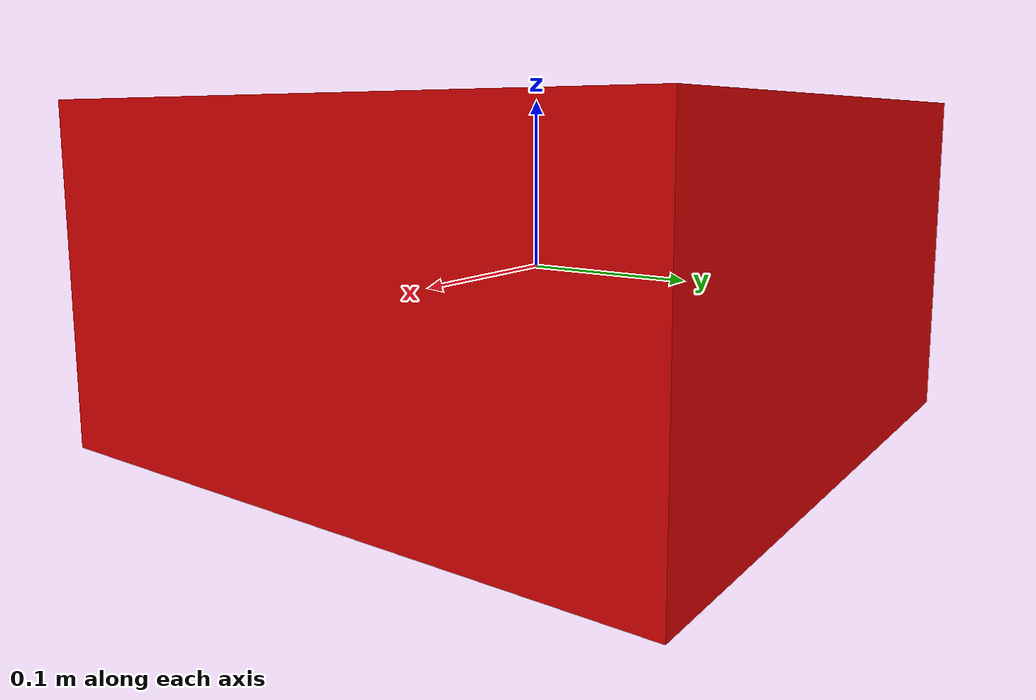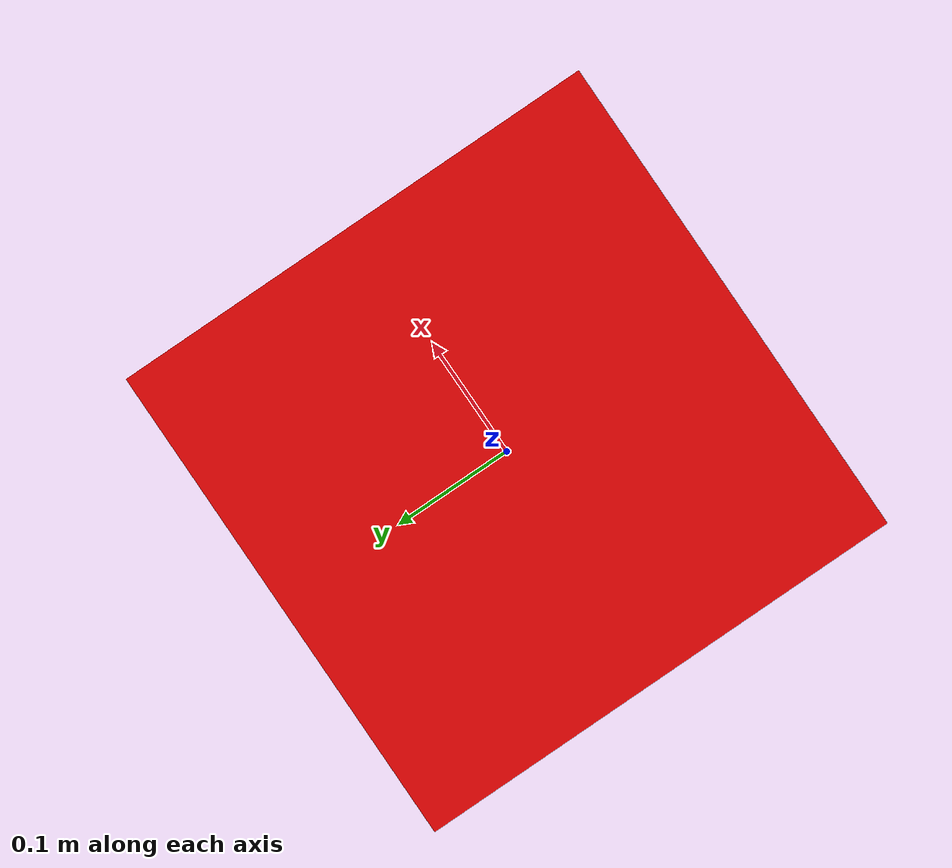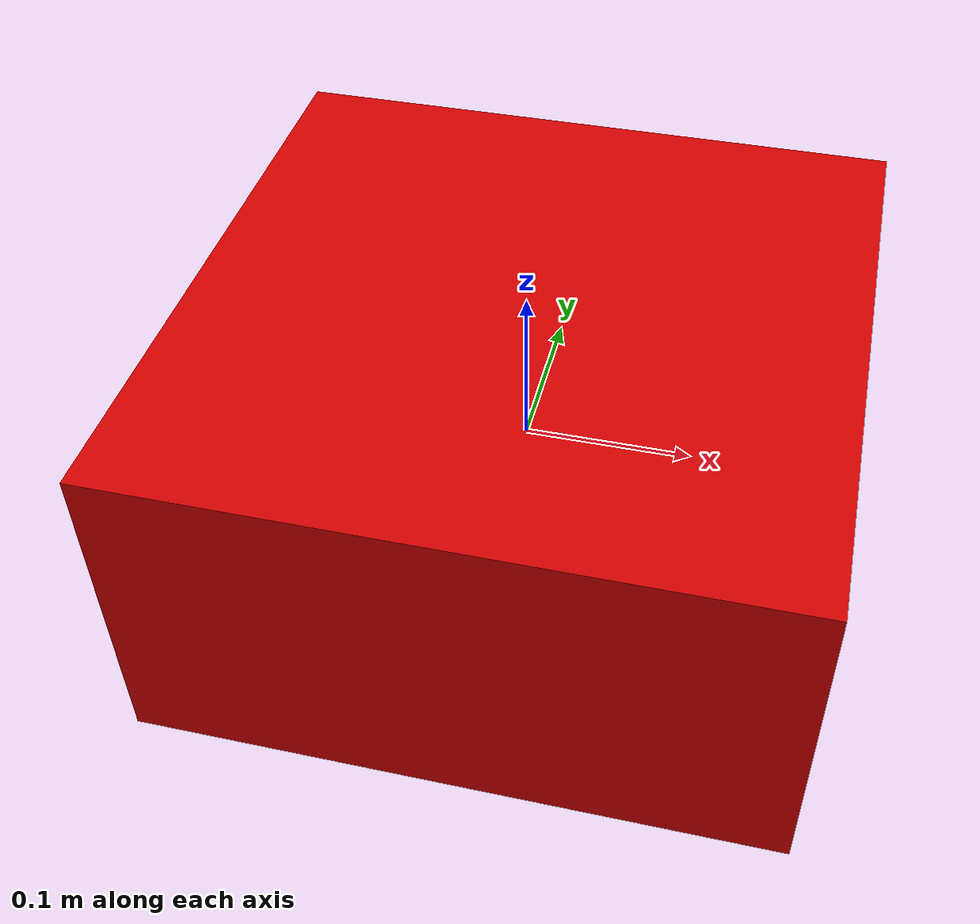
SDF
<?xml version="1.0" ?>
<sdf version="1.6">
  <model name="opponent">

    <!--general object params -->
    <static>false</static>

    <link name="oppoonent_base">
      <!-- i want it to be in the air, close to Otto's lidar height-->
      <gravity>false</gravity>

      <!--pose of link relative to model-->
      <pose>0 0 0 0 0 0</pose>

      <visual name="visual">
          <geometry>
              <box>
                  <size>0.38 0.38 0.2</size> <!--in meters-->
              </box>
          </geometry>
          <material>
              <ambient>0.8 0.0 0.0 1.0</ambient>
              <diffuse>0.8 0.0 0.0 1.0</diffuse>
              <specular>0.1 0.1 0.1 1.0</specular>
              <emissive>0 0 0 1</emissive>
          </material>
      </visual>

      <collision name="collision">
			<geometry>
                <box>
                 <size>0.38 0.38 0.2</size> <!--in meters-->
              </box>
			</geometry>
					<surface>
                <friction>
                    <ode>
                        <mu>0.2</mu>
                        <mu2>0.2</mu2>
                    </ode>
                </friction>
            </surface>
      </collision>

      <inertial>
        <mass>0.04</mass> <!--units are in kg. 1g = 0.001kg-->
        <inertia>
          <ixx>0.0002</ixx>
          <iyy>0.0002</iyy>
          <izz>0.0002</izz>
        </inertia>
      </inertial>

    </link>

    <plugin filename="gz-sim-pose-publisher-system" name="gz::sim::systems::PosePublisher">
      <publish_link_pose>false</publish_link_pose>
      <publish_visual_pose>false</publish_visual_pose>
      <publish_collision_pose>false</publish_collision_pose>
      <publish_sensor_pose>false</publish_sensor_pose>
      <publish_model_pose>true</publish_model_pose>
      <publish_nested_model_pose>true</publish_nested_model_pose>
      <use_pose_vector_msg>false</use_pose_vector_msg>
      <update_frequency>20</update_frequency> <!-- Publish at 20 Hz -->
      <static_publisher>false</static_publisher>
      <static_update_frequency>1</static_update_frequency>
    </plugin>

  </model>
</sdf>
